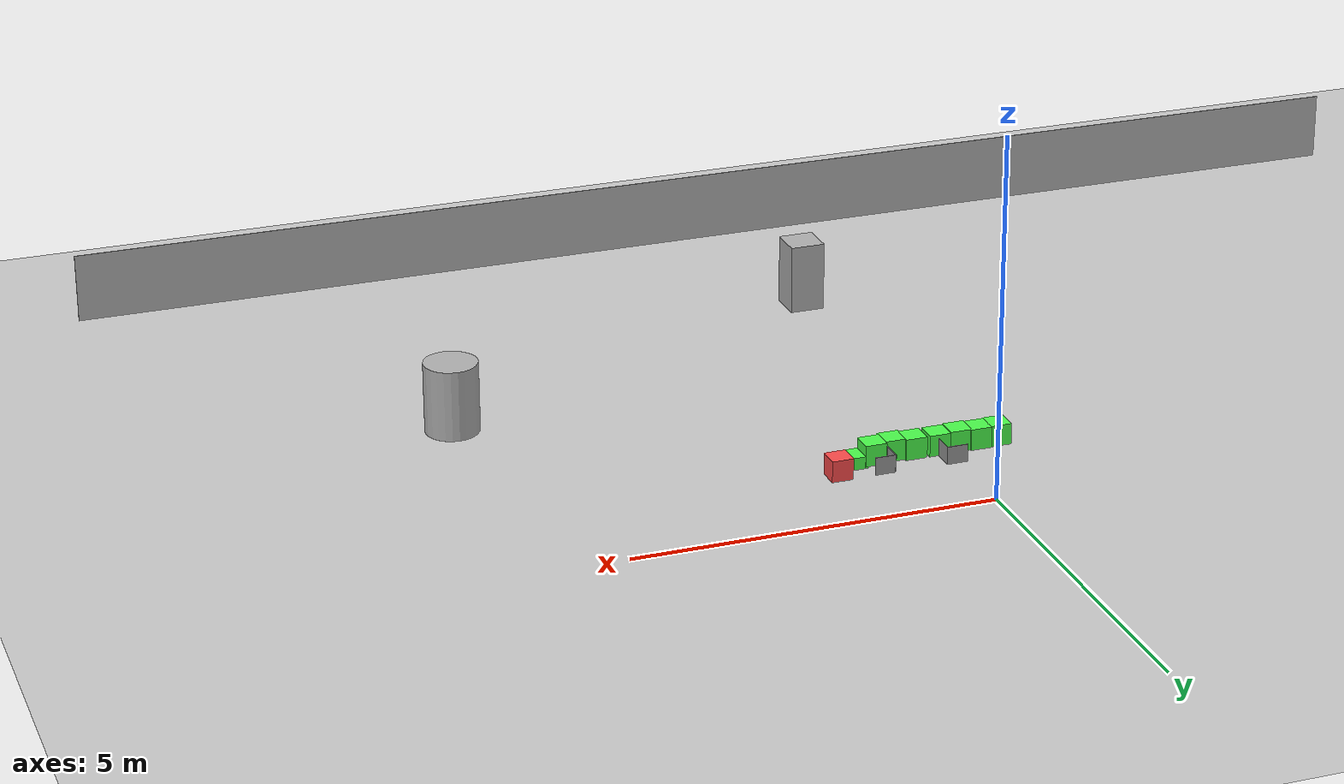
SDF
<sdf version="1.10">
 <world name="default">
  <model name="ground_plane">
   <static>true</static>
   <link name="link">
    <collision name="collision">
     <geometry><plane><normal>0 0 1</normal><size>1 1</size></plane></geometry>
    </collision>
    <visual name="visual">
     <geometry><plane><normal>0 0 1</normal><size>100 100</size></plane></geometry>
     <material>
      <ambient>0.800000012 0.800000012 0.800000012 1</ambient>
      <diffuse>0.800000012 0.800000012 0.800000012 1</diffuse>
      <specular>0.800000012 0.800000012 0.800000012 1</specular>
     </material>
    </visual>
    <inertial>
     <mass>1</mass>
     <inertia><ixx>1</ixx><ixy>0</ixy><ixz>0</ixz><iyy>1</iyy><iyz>0</iyz><izz>1</izz></inertia>
    </inertial>
   </link>
  </model>
  <model name="wall_4">
   <pose>0 -10 .5 0 0 0</pose>
   <static>true</static>
   <link name="link">
    <collision name="collision"><geometry><box><size>20 .01 1</size></box></geometry></collision>
    <visual name="visual">
     <geometry><box><size>20 .01 1</size></box></geometry>
     <material>
      <ambient>0.7 0.7 0.7 1</ambient>
      <diffuse>0.7 0.7 0.7 1</diffuse>
      <specular>0.7 0.7 0.7 1</specular>
     </material>
    </visual>
    <inertial>
     <mass>1</mass>
     <inertia><ixx>1</ixx><ixy>0</ixy><ixz>0</ixz><iyy>1</iyy><iyz>0</iyz><izz>1</izz></inertia>
    </inertial>
   </link>
  </model>
  <model name="cube_2">
   <pose>0 -7 .5 0 0 0</pose>
   <static>true</static>
   <link name="link">
    <collision name="collision"><geometry><box><size>.5 .5 1</size></box></geometry></collision>
    <visual name="visual">
     <geometry><box><size>.5 .5 1</size></box></geometry>
     <material>
      <ambient>0.7 0.7 0.7 1</ambient>
      <diffuse>0.7 0.7 0.7 1</diffuse>
      <specular>0.7 0.7 0.7 1</specular>
     </material>
    </visual>
    <inertial>
     <mass>1</mass>
     <inertia><ixx>1</ixx><ixy>0</ixy><ixz>0</ixz><iyy>1</iyy><iyz>0</iyz><izz>1</izz></inertia>
    </inertial>
   </link>
  </model>
  <model name="cylinder_1">
   <pose>6 -4.5 .5 0 0 0</pose>
   <static>true</static>
   <link name="link">
    <collision name="collision">
     <geometry><cylinder><length>1</length><radius>.375</radius></cylinder></geometry>
    </collision>
    <visual name="visual">
     <geometry><cylinder><length>1</length><radius>.375</radius></cylinder></geometry>
     <material>
      <ambient>0.7 0.7 0.7 1</ambient>
      <diffuse>0.7 0.7 0.7 1</diffuse>
      <specular>0.7 0.7 0.7 1</specular>
     </material>
    </visual>
    <inertial>
     <mass>1</mass>
     <inertia><ixx>1</ixx><ixy>0</ixy><ixz>0</ixz><iyy>1</iyy><iyz>0</iyz><izz>1</izz></inertia>
    </inertial>
   </link>
  </model>
  <model name="Box_Red_clone_7">
   <link name="link_0">
    <inertial>
     <mass>1</mass>
     <inertia>
      <ixx>0.166667</ixx>
      <ixy>0</ixy>
      <ixz>0</ixz>
      <iyy>0.166667</iyy>
      <iyz>0</iyz>
      <izz>0.166667</izz>
     </inertia>
    </inertial>
    <visual name="visual">
     <geometry><box><size>0.3 0.3 0.3</size></box></geometry>
     <material>
      <lighting>1</lighting>
      <script><uri>file://media/materials/scripts/gazebo.material</uri><name>Gazebo/Grey</name></script>
      <ambient>1 0.3 0.3 1</ambient>
      <diffuse>0.7 0.7 0.7 1</diffuse>
      <specular>0.01 0.01 0.01 1</specular>
      <emissive>0 0 0 1</emissive>
      <shader type="vertex"><normal_map>__default__</normal_map></shader>
     </material>
    </visual>
    <collision name="collision">
     <geometry><box><size>0.3 0.3 0.3</size></box></geometry>
     <surface>
      <friction>
       <ode><mu>1</mu><mu2>1</mu2><fdir1>0 0 0</fdir1><slip1>0</slip1><slip2>0</slip2></ode>
       <torsional>
        <coefficient>1</coefficient>
        <patch_radius>0</patch_radius>
        <surface_radius>0</surface_radius>
        <use_patch_radius>1</use_patch_radius>
        <ode><slip>0</slip></ode>
       </torsional>
      </friction>
      <bounce><restitution_coefficient>0</restitution_coefficient><threshold>1e+06</threshold></bounce>
      <contact>
       <collide_without_contact>0</collide_without_contact>
       <collide_without_contact_bitmask>1</collide_without_contact_bitmask>
       <collide_bitmask>1</collide_bitmask>
       <ode>
        <soft_cfm>0</soft_cfm>
        <soft_erp>0.2</soft_erp>
        <kp>1e+13</kp>
        <kd>1</kd>
        <max_vel>0.01</max_vel>
        <min_depth>0</min_depth>
       </ode>
       <bullet>
        <split_impulse>1</split_impulse>
        <split_impulse_penetration_threshold>-0.01</split_impulse_penetration_threshold>
        <soft_cfm>0</soft_cfm>
        <soft_erp>0.2</soft_erp>
        <kp>1e+13</kp>
        <kd>1</kd>
       </bullet>
      </contact>
     </surface>
    </collision>
   </link>
   <static>0</static>
   <pose>1.65728 -1.34759 0.149998 -7e-06 4e-06 3.7e-05</pose>
  </model>
  <model name="Box_Green">
   <link name="link_0">
    <inertial>
     <mass>1</mass>
     <inertia>
      <ixx>0.166667</ixx>
      <ixy>0</ixy>
      <ixz>0</ixz>
      <iyy>0.166667</iyy>
      <iyz>0</iyz>
      <izz>0.166667</izz>
     </inertia>
    </inertial>
    <visual name="visual">
     <geometry><box><size>0.3 0.3 0.3</size></box></geometry>
     <material>
      <lighting>1</lighting>
      <script><uri>file://media/materials/scripts/gazebo.material</uri><name>Gazebo/Grey</name></script>
      <ambient>0.3 1 0.3 1</ambient>
      <diffuse>0.7 0.7 0.7 1</diffuse>
      <specular>0.01 0.01 0.01 1</specular>
      <emissive>0 0 0 1</emissive>
      <shader type="vertex"><normal_map>__default__</normal_map></shader>
     </material>
    </visual>
    <collision name="collision">
     <geometry><box><size>0.3 0.3 0.3</size></box></geometry>
     <surface>
      <friction>
       <ode><mu>1</mu><mu2>1</mu2><fdir1>0 0 0</fdir1><slip1>0</slip1><slip2>0</slip2></ode>
       <torsional>
        <coefficient>1</coefficient>
        <patch_radius>0</patch_radius>
        <surface_radius>0</surface_radius>
        <use_patch_radius>1</use_patch_radius>
        <ode><slip>0</slip></ode>
       </torsional>
      </friction>
      <bounce><restitution_coefficient>0</restitution_coefficient><threshold>1e+06</threshold></bounce>
      <contact>
       <collide_without_contact>0</collide_without_contact>
       <collide_without_contact_bitmask>1</collide_without_contact_bitmask>
       <collide_bitmask>1</collide_bitmask>
       <ode>
        <soft_cfm>0</soft_cfm>
        <soft_erp>0.2</soft_erp>
        <kp>1e+13</kp>
        <kd>1</kd>
        <max_vel>0.01</max_vel>
        <min_depth>0</min_depth>
       </ode>
       <bullet>
        <split_impulse>1</split_impulse>
        <split_impulse_penetration_threshold>-0.01</split_impulse_penetration_threshold>
        <soft_cfm>0</soft_cfm>
        <soft_erp>0.2</soft_erp>
        <kp>1e+13</kp>
        <kd>1</kd>
       </bullet>
      </contact>
     </surface>
    </collision>
   </link>
   <static>0</static>
   <pose>1.32585 -1.64602 0 0 -0 0</pose>
  </model>
  <model name="Box_Green_clone">
   <link name="link_0">
    <inertial>
     <mass>1</mass>
     <inertia>
      <ixx>0.166667</ixx>
      <ixy>0</ixy>
      <ixz>0</ixz>
      <iyy>0.166667</iyy>
      <iyz>0</iyz>
      <izz>0.166667</izz>
     </inertia>
    </inertial>
    <visual name="visual">
     <geometry><box><size>0.3 0.3 0.3</size></box></geometry>
     <material>
      <lighting>1</lighting>
      <script><uri>file://media/materials/scripts/gazebo.material</uri><name>Gazebo/Grey</name></script>
      <ambient>0.3 1 0.3 1</ambient>
      <diffuse>0.7 0.7 0.7 1</diffuse>
      <specular>0.01 0.01 0.01 1</specular>
      <emissive>0 0 0 1</emissive>
      <shader type="vertex"><normal_map>__default__</normal_map></shader>
     </material>
    </visual>
    <collision name="collision">
     <geometry><box><size>0.3 0.3 0.3</size></box></geometry>
     <surface>
      <friction>
       <ode><mu>1</mu><mu2>1</mu2><fdir1>0 0 0</fdir1><slip1>0</slip1><slip2>0</slip2></ode>
       <torsional>
        <coefficient>1</coefficient>
        <patch_radius>0</patch_radius>
        <surface_radius>0</surface_radius>
        <use_patch_radius>1</use_patch_radius>
        <ode><slip>0</slip></ode>
       </torsional>
      </friction>
      <bounce><restitution_coefficient>0</restitution_coefficient><threshold>1e+06</threshold></bounce>
      <contact>
       <collide_without_contact>0</collide_without_contact>
       <collide_without_contact_bitmask>1</collide_without_contact_bitmask>
       <collide_bitmask>1</collide_bitmask>
       <ode>
        <soft_cfm>0</soft_cfm>
        <soft_erp>0.2</soft_erp>
        <kp>1e+13</kp>
        <kd>1</kd>
        <max_vel>0.01</max_vel>
        <min_depth>0</min_depth>
       </ode>
       <bullet>
        <split_impulse>1</split_impulse>
        <split_impulse_penetration_threshold>-0.01</split_impulse_penetration_threshold>
        <soft_cfm>0</soft_cfm>
        <soft_erp>0.2</soft_erp>
        <kp>1e+13</kp>
        <kd>1</kd>
       </bullet>
      </contact>
     </surface>
    </collision>
   </link>
   <static>0</static>
   <pose>1.06676 -1.64369 0.15 0 -0 3e-06</pose>
  </model>
  <model name="Box_Green_clone_0">
   <link name="link_0">
    <inertial>
     <mass>1</mass>
     <inertia>
      <ixx>0.166667</ixx>
      <ixy>0</ixy>
      <ixz>0</ixz>
      <iyy>0.166667</iyy>
      <iyz>0</iyz>
      <izz>0.166667</izz>
     </inertia>
    </inertial>
    <visual name="visual">
     <geometry><box><size>0.3 0.3 0.3</size></box></geometry>
     <material>
      <lighting>1</lighting>
      <script><uri>file://media/materials/scripts/gazebo.material</uri><name>Gazebo/Grey</name></script>
      <ambient>0.3 1 0.3 1</ambient>
      <diffuse>0.7 0.7 0.7 1</diffuse>
      <specular>0.01 0.01 0.01 1</specular>
      <emissive>0 0 0 1</emissive>
      <shader type="vertex"><normal_map>__default__</normal_map></shader>
     </material>
    </visual>
    <collision name="collision">
     <geometry><box><size>0.3 0.3 0.3</size></box></geometry>
     <surface>
      <friction>
       <ode><mu>1</mu><mu2>1</mu2><fdir1>0 0 0</fdir1><slip1>0</slip1><slip2>0</slip2></ode>
       <torsional>
        <coefficient>1</coefficient>
        <patch_radius>0</patch_radius>
        <surface_radius>0</surface_radius>
        <use_patch_radius>1</use_patch_radius>
        <ode><slip>0</slip></ode>
       </torsional>
      </friction>
      <bounce><restitution_coefficient>0</restitution_coefficient><threshold>1e+06</threshold></bounce>
      <contact>
       <collide_without_contact>0</collide_without_contact>
       <collide_without_contact_bitmask>1</collide_without_contact_bitmask>
       <collide_bitmask>1</collide_bitmask>
       <ode>
        <soft_cfm>0</soft_cfm>
        <soft_erp>0.2</soft_erp>
        <kp>1e+13</kp>
        <kd>1</kd>
        <max_vel>0.01</max_vel>
        <min_depth>0</min_depth>
       </ode>
       <bullet>
        <split_impulse>1</split_impulse>
        <split_impulse_penetration_threshold>-0.01</split_impulse_penetration_threshold>
        <soft_cfm>0</soft_cfm>
        <soft_erp>0.2</soft_erp>
        <kp>1e+13</kp>
        <kd>1</kd>
       </bullet>
      </contact>
     </surface>
    </collision>
   </link>
   <static>0</static>
   <pose>0.782608 -1.6851 0.15 0 -0 3e-06</pose>
  </model>
  <model name="Box_Green_clone_1">
   <link name="link_0">
    <inertial>
     <mass>1</mass>
     <inertia>
      <ixx>0.166667</ixx>
      <ixy>0</ixy>
      <ixz>0</ixz>
      <iyy>0.166667</iyy>
      <iyz>0</iyz>
      <izz>0.166667</izz>
     </inertia>
    </inertial>
    <visual name="visual">
     <geometry><box><size>0.3 0.3 0.3</size></box></geometry>
     <material>
      <lighting>1</lighting>
      <script><uri>file://media/materials/scripts/gazebo.material</uri><name>Gazebo/Grey</name></script>
      <ambient>0.3 1 0.3 1</ambient>
      <diffuse>0.7 0.7 0.7 1</diffuse>
      <specular>0.01 0.01 0.01 1</specular>
      <emissive>0 0 0 1</emissive>
      <shader type="vertex"><normal_map>__default__</normal_map></shader>
     </material>
    </visual>
    <collision name="collision">
     <geometry><box><size>0.3 0.3 0.3</size></box></geometry>
     <surface>
      <friction>
       <ode><mu>1</mu><mu2>1</mu2><fdir1>0 0 0</fdir1><slip1>0</slip1><slip2>0</slip2></ode>
       <torsional>
        <coefficient>1</coefficient>
        <patch_radius>0</patch_radius>
        <surface_radius>0</surface_radius>
        <use_patch_radius>1</use_patch_radius>
        <ode><slip>0</slip></ode>
       </torsional>
      </friction>
      <bounce><restitution_coefficient>0</restitution_coefficient><threshold>1e+06</threshold></bounce>
      <contact>
       <collide_without_contact>0</collide_without_contact>
       <collide_without_contact_bitmask>1</collide_without_contact_bitmask>
       <collide_bitmask>1</collide_bitmask>
       <ode>
        <soft_cfm>0</soft_cfm>
        <soft_erp>0.2</soft_erp>
        <kp>1e+13</kp>
        <kd>1</kd>
        <max_vel>0.01</max_vel>
        <min_depth>0</min_depth>
       </ode>
       <bullet>
        <split_impulse>1</split_impulse>
        <split_impulse_penetration_threshold>-0.01</split_impulse_penetration_threshold>
        <soft_cfm>0</soft_cfm>
        <soft_erp>0.2</soft_erp>
        <kp>1e+13</kp>
        <kd>1</kd>
       </bullet>
      </contact>
     </surface>
    </collision>
   </link>
   <static>0</static>
   <pose>0.487665 -1.64601 0.15 0 -0 3e-06</pose>
  </model>
  <model name="Box_Green_clone_2">
   <link name="link_0">
    <inertial>
     <mass>1</mass>
     <inertia>
      <ixx>0.166667</ixx>
      <ixy>0</ixy>
      <ixz>0</ixz>
      <iyy>0.166667</iyy>
      <iyz>0</iyz>
      <izz>0.166667</izz>
     </inertia>
    </inertial>
    <visual name="visual">
     <geometry><box><size>0.3 0.3 0.3</size></box></geometry>
     <material>
      <lighting>1</lighting>
      <script><uri>file://media/materials/scripts/gazebo.material</uri><name>Gazebo/Grey</name></script>
      <ambient>0.3 1 0.3 1</ambient>
      <diffuse>0.7 0.7 0.7 1</diffuse>
      <specular>0.01 0.01 0.01 1</specular>
      <emissive>0 0 0 1</emissive>
      <shader type="vertex"><normal_map>__default__</normal_map></shader>
     </material>
    </visual>
    <collision name="collision">
     <geometry><box><size>0.3 0.3 0.3</size></box></geometry>
     <surface>
      <friction>
       <ode><mu>1</mu><mu2>1</mu2><fdir1>0 0 0</fdir1><slip1>0</slip1><slip2>0</slip2></ode>
       <torsional>
        <coefficient>1</coefficient>
        <patch_radius>0</patch_radius>
        <surface_radius>0</surface_radius>
        <use_patch_radius>1</use_patch_radius>
        <ode><slip>0</slip></ode>
       </torsional>
      </friction>
      <bounce><restitution_coefficient>0</restitution_coefficient><threshold>1e+06</threshold></bounce>
      <contact>
       <collide_without_contact>0</collide_without_contact>
       <collide_without_contact_bitmask>1</collide_without_contact_bitmask>
       <collide_bitmask>1</collide_bitmask>
       <ode>
        <soft_cfm>0</soft_cfm>
        <soft_erp>0.2</soft_erp>
        <kp>1e+13</kp>
        <kd>1</kd>
        <max_vel>0.01</max_vel>
        <min_depth>0</min_depth>
       </ode>
       <bullet>
        <split_impulse>1</split_impulse>
        <split_impulse_penetration_threshold>-0.01</split_impulse_penetration_threshold>
        <soft_cfm>0</soft_cfm>
        <soft_erp>0.2</soft_erp>
        <kp>1e+13</kp>
        <kd>1</kd>
       </bullet>
      </contact>
     </surface>
    </collision>
   </link>
   <static>0</static>
   <pose>0.149554 -1.64574 0.15 0 -0 3e-06</pose>
  </model>
  <model name="Box_Green_clone_3">
   <link name="link_0">
    <inertial>
     <mass>1</mass>
     <inertia>
      <ixx>0.166667</ixx>
      <ixy>0</ixy>
      <ixz>0</ixz>
      <iyy>0.166667</iyy>
      <iyz>0</iyz>
      <izz>0.166667</izz>
     </inertia>
    </inertial>
    <visual name="visual">
     <geometry><box><size>0.3 0.3 0.3</size></box></geometry>
     <material>
      <lighting>1</lighting>
      <script><uri>file://media/materials/scripts/gazebo.material</uri><name>Gazebo/Grey</name></script>
      <ambient>0.3 1 0.3 1</ambient>
      <diffuse>0.7 0.7 0.7 1</diffuse>
      <specular>0.01 0.01 0.01 1</specular>
      <emissive>0 0 0 1</emissive>
      <shader type="vertex"><normal_map>__default__</normal_map></shader>
     </material>
    </visual>
    <collision name="collision">
     <geometry><box><size>0.3 0.3 0.3</size></box></geometry>
     <surface>
      <friction>
       <ode><mu>1</mu><mu2>1</mu2><fdir1>0 0 0</fdir1><slip1>0</slip1><slip2>0</slip2></ode>
       <torsional>
        <coefficient>1</coefficient>
        <patch_radius>0</patch_radius>
        <surface_radius>0</surface_radius>
        <use_patch_radius>1</use_patch_radius>
        <ode><slip>0</slip></ode>
       </torsional>
      </friction>
      <bounce><restitution_coefficient>0</restitution_coefficient><threshold>1e+06</threshold></bounce>
      <contact>
       <collide_without_contact>0</collide_without_contact>
       <collide_without_contact_bitmask>1</collide_without_contact_bitmask>
       <collide_bitmask>1</collide_bitmask>
       <ode>
        <soft_cfm>0</soft_cfm>
        <soft_erp>0.2</soft_erp>
        <kp>1e+13</kp>
        <kd>1</kd>
        <max_vel>0.01</max_vel>
        <min_depth>0</min_depth>
       </ode>
       <bullet>
        <split_impulse>1</split_impulse>
        <split_impulse_penetration_threshold>-0.01</split_impulse_penetration_threshold>
        <soft_cfm>0</soft_cfm>
        <soft_erp>0.2</soft_erp>
        <kp>1e+13</kp>
        <kd>1</kd>
       </bullet>
      </contact>
     </surface>
    </collision>
   </link>
   <static>0</static>
   <pose>-0.158052 -1.66867 0.15 0 -0 3e-06</pose>
  </model>
  <model name="Box_Green_clone_4">
   <link name="link_0">
    <inertial>
     <mass>1</mass>
     <inertia>
      <ixx>0.166667</ixx>
      <ixy>0</ixy>
      <ixz>0</ixz>
      <iyy>0.166667</iyy>
      <iyz>0</iyz>
      <izz>0.166667</izz>
     </inertia>
    </inertial>
    <visual name="visual">
     <geometry><box><size>0.3 0.3 0.3</size></box></geometry>
     <material>
      <lighting>1</lighting>
      <script><uri>file://media/materials/scripts/gazebo.material</uri><name>Gazebo/Grey</name></script>
      <ambient>0.3 1 0.3 1</ambient>
      <diffuse>0.7 0.7 0.7 1</diffuse>
      <specular>0.01 0.01 0.01 1</specular>
      <emissive>0 0 0 1</emissive>
      <shader type="vertex"><normal_map>__default__</normal_map></shader>
     </material>
    </visual>
    <collision name="collision">
     <geometry><box><size>0.3 0.3 0.3</size></box></geometry>
     <surface>
      <friction>
       <ode><mu>1</mu><mu2>1</mu2><fdir1>0 0 0</fdir1><slip1>0</slip1><slip2>0</slip2></ode>
       <torsional>
        <coefficient>1</coefficient>
        <patch_radius>0</patch_radius>
        <surface_radius>0</surface_radius>
        <use_patch_radius>1</use_patch_radius>
        <ode><slip>0</slip></ode>
       </torsional>
      </friction>
      <bounce><restitution_coefficient>0</restitution_coefficient><threshold>1e+06</threshold></bounce>
      <contact>
       <collide_without_contact>0</collide_without_contact>
       <collide_without_contact_bitmask>1</collide_without_contact_bitmask>
       <collide_bitmask>1</collide_bitmask>
       <ode>
        <soft_cfm>0</soft_cfm>
        <soft_erp>0.2</soft_erp>
        <kp>1e+13</kp>
        <kd>1</kd>
        <max_vel>0.01</max_vel>
        <min_depth>0</min_depth>
       </ode>
       <bullet>
        <split_impulse>1</split_impulse>
        <split_impulse_penetration_threshold>-0.01</split_impulse_penetration_threshold>
        <soft_cfm>0</soft_cfm>
        <soft_erp>0.2</soft_erp>
        <kp>1e+13</kp>
        <kd>1</kd>
       </bullet>
      </contact>
     </surface>
    </collision>
   </link>
   <static>0</static>
   <pose>-0.443991 -1.64387 0.15 0 -0 3e-06</pose>
  </model>
  <model name="Box_Green_clone_5">
   <link name="link_0">
    <inertial>
     <mass>1</mass>
     <inertia>
      <ixx>0.166667</ixx>
      <ixy>0</ixy>
      <ixz>0</ixz>
      <iyy>0.166667</iyy>
      <iyz>0</iyz>
      <izz>0.166667</izz>
     </inertia>
    </inertial>
    <visual name="visual">
     <geometry><box><size>0.3 0.3 0.3</size></box></geometry>
     <material>
      <lighting>1</lighting>
      <script><uri>file://media/materials/scripts/gazebo.material</uri><name>Gazebo/Grey</name></script>
      <ambient>0.3 1 0.3 1</ambient>
      <diffuse>0.7 0.7 0.7 1</diffuse>
      <specular>0.01 0.01 0.01 1</specular>
      <emissive>0 0 0 1</emissive>
      <shader type="vertex"><normal_map>__default__</normal_map></shader>
     </material>
    </visual>
    <collision name="collision">
     <geometry><box><size>0.3 0.3 0.3</size></box></geometry>
     <surface>
      <friction>
       <ode><mu>1</mu><mu2>1</mu2><fdir1>0 0 0</fdir1><slip1>0</slip1><slip2>0</slip2></ode>
       <torsional>
        <coefficient>1</coefficient>
        <patch_radius>0</patch_radius>
        <surface_radius>0</surface_radius>
        <use_patch_radius>1</use_patch_radius>
        <ode><slip>0</slip></ode>
       </torsional>
      </friction>
      <bounce><restitution_coefficient>0</restitution_coefficient><threshold>1e+06</threshold></bounce>
      <contact>
       <collide_without_contact>0</collide_without_contact>
       <collide_without_contact_bitmask>1</collide_without_contact_bitmask>
       <collide_bitmask>1</collide_bitmask>
       <ode>
        <soft_cfm>0</soft_cfm>
        <soft_erp>0.2</soft_erp>
        <kp>1e+13</kp>
        <kd>1</kd>
        <max_vel>0.01</max_vel>
        <min_depth>0</min_depth>
       </ode>
       <bullet>
        <split_impulse>1</split_impulse>
        <split_impulse_penetration_threshold>-0.01</split_impulse_penetration_threshold>
        <soft_cfm>0</soft_cfm>
        <soft_erp>0.2</soft_erp>
        <kp>1e+13</kp>
        <kd>1</kd>
       </bullet>
      </contact>
     </surface>
    </collision>
   </link>
   <static>0</static>
   <pose>-0.735323 -1.65791 0.15 0 -0 3e-06</pose>
  </model>
  <model name="Maze_L_LB_clone_2">
   <pose>1.04282 -1.36369 0 0 -0 0</pose>
   <link name="Wall_0">
    <collision name="Wall_0_Collision">
     <geometry><box><size>0.294 0.01 0.25</size></box></geometry>
     <pose>0 0 0.125 0 -0 0</pose>
    </collision>
    <visual name="Wall_0_Visual">
     <pose>0 0 0.125 0 -0 0</pose>
     <geometry><box><size>0.294 0.01 0.25</size></box></geometry>
     <material>
      <script><uri>file://media/materials/scripts/gazebo.material</uri><name>Gazebo/Grey</name></script>
      <ambient>1 1 1 1</ambient>
     </material>
     <meta><layer>0</layer></meta>
    </visual>
    <pose>0 0.142 0 0 -0 0</pose>
   </link>
   <link name="Wall_2">
    <collision name="Wall_2_Collision">
     <geometry><box><size>0.294 0.01 0.25</size></box></geometry>
     <pose>0 0 0.125 0 -0 0</pose>
    </collision>
    <visual name="Wall_2_Visual">
     <pose>0 0 0.125 0 -0 0</pose>
     <geometry><box><size>0.294 0.01 0.25</size></box></geometry>
     <material>
      <script><uri>file://media/materials/scripts/gazebo.material</uri><name>Gazebo/Grey</name></script>
      <ambient>1 1 1 1</ambient>
     </material>
     <meta><layer>0</layer></meta>
    </visual>
    <pose>-0.142 0 0 0 0 -1.5708</pose>
   </link>
   <static>1</static>
  </model>
  <model name="Maze_L_LU_clone_0">
   <pose>0.026704 -1.34838 0 0 -0 0</pose>
   <link name="Wall_0">
    <collision name="Wall_0_Collision">
     <geometry><box><size>0.294 0.01 0.25</size></box></geometry>
     <pose>0 0 0.125 0 -0 0</pose>
    </collision>
    <visual name="Wall_0_Visual">
     <pose>0 0 0.125 0 -0 0</pose>
     <geometry><box><size>0.294 0.01 0.25</size></box></geometry>
     <material>
      <script><uri>file://media/materials/scripts/gazebo.material</uri><name>Gazebo/Grey</name></script>
      <ambient>1 1 1 1</ambient>
     </material>
     <meta><layer>0</layer></meta>
    </visual>
    <pose>0 0.142 0 0 -0 3.14159</pose>
   </link>
   <link name="Wall_2">
    <collision name="Wall_2_Collision">
     <geometry><box><size>0.294 0.01 0.25</size></box></geometry>
     <pose>0 0 0.125 0 -0 0</pose>
    </collision>
    <visual name="Wall_2_Visual">
     <pose>0 0 0.125 0 -0 0</pose>
     <geometry><box><size>0.294 0.01 0.25</size></box></geometry>
     <material>
      <script><uri>file://media/materials/scripts/gazebo.material</uri><name>Gazebo/Grey</name></script>
      <ambient>1 1 1 1</ambient>
     </material>
     <meta><layer>0</layer></meta>
    </visual>
    <pose>0.142 0 0 0 0 -1.5708</pose>
   </link>
   <static>1</static>
  </model>
 </world>
</sdf>
